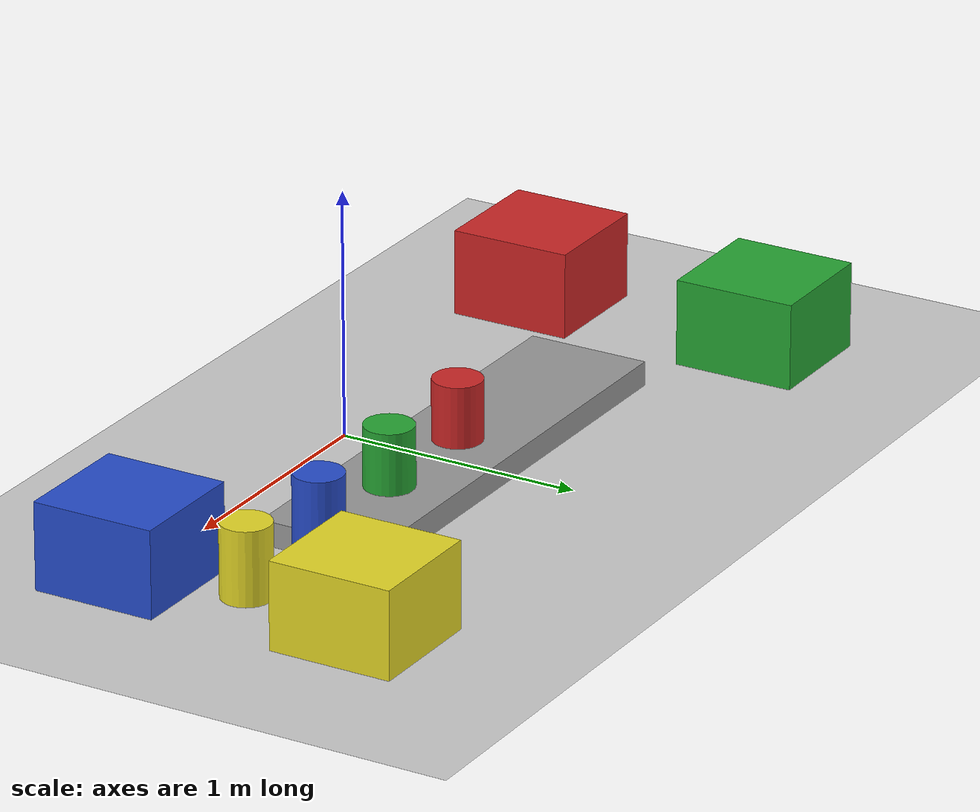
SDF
<?xml version="1.0" ?>
<sdf version="1.6">
  <world name="pick_place_4bins">
    <!-- Ground plane -->
    <include>
      <uri>model://ground_plane</uri>
    </include>
    <!-- Light source -->
    <include>
      <uri>model://sun</uri>
    </include>
    <!-- Conveyor belt (moving box) -->
    <model name="conveyor">
      <pose>0.0 0.5 0.05 0 0 0</pose>
      <link name="link">
        <visual name="visual">
          <geometry>
            <box>
              <size>2.0 0.5 0.1</size>
            </box>
          </geometry>
          <material>
            <script>
              <uri>file://media/materials/scripts/gazebo.material</uri>
              <name>Gazebo/Grey</name>
            </script>
          </material>
        </visual>
        <collision name="collision">
          <geometry>
            <box>
              <size>2.0 0.5 0.1</size>
            </box>
          </geometry>
        </collision>
        <velocity>0.1 0 0 0 0 0</velocity> <!-- Moves along X -->
      </link>
    </model>
    <!-- Plastic garbage (red cylinder) -->
    <model name="plastic_garbage">
      <pose>0.0 0.5 0.2 0 0 0</pose>
      <link name="link">
        <visual name="visual">
          <geometry>
            <cylinder>
              <radius>0.1</radius>
              <length>0.3</length>
            </cylinder>
          </geometry>
          <material>
            <script>
              <uri>file://media/materials/scripts/gazebo.material</uri>
              <name>Gazebo/Red</name>
            </script>
          </material>
        </visual>
        <collision name="collision">
          <geometry>
            <cylinder>
              <radius>0.1</radius>
              <length>0.3</length>
            </cylinder>
          </geometry>
        </collision>
      </link>
    </model>
    <!-- Organic garbage (green cylinder) -->
    <model name="organic_garbage">
      <pose>0.5 0.5 0.2 0 0 0</pose>
      <link name="link">
        <visual name="visual">
          <geometry>
            <cylinder>
              <radius>0.1</radius>
              <length>0.3</length>
            </cylinder>
          </geometry>
          <material>
            <script>
              <uri>file://media/materials/scripts/gazebo.material</uri>
              <name>Gazebo/Green</name>
            </script>
          </material>
        </visual>
        <collision name="collision">
          <geometry>
            <cylinder>
              <radius>0.1</radius>
              <length>0.3</length>
            </cylinder>
          </geometry>
        </collision>
      </link>
    </model>
    <!-- Metal garbage (blue cylinder) -->
    <model name="metal_garbage">
      <pose>1.0 0.5 0.2 0 0 0</pose>
      <link name="link">
        <visual name="visual">
          <geometry>
            <cylinder>
              <radius>0.1</radius>
              <length>0.3</length>
            </cylinder>
          </geometry>
          <material>
            <script>
              <uri>file://media/materials/scripts/gazebo.material</uri>
              <name>Gazebo/Blue</name>
            </script>
          </material>
        </visual>
        <collision name="collision">
          <geometry>
            <cylinder>
              <radius>0.1</radius>
              <length>0.3</length>
            </cylinder>
          </geometry>
        </collision>
      </link>
    </model>
    <!-- Paper garbage (yellow cylinder) -->
    <model name="paper_garbage">
      <pose>1.5 0.5 0.2 0 0 0</pose>
      <link name="link">
        <visual name="visual">
          <geometry>
            <cylinder>
              <radius>0.1</radius>
              <length>0.3</length>
            </cylinder>
          </geometry>
          <material>
            <script>
              <uri>file://media/materials/scripts/gazebo.material</uri>
              <name>Gazebo/Yellow</name>
            </script>
          </material>
        </visual>
        <collision name="collision">
          <geometry>
            <cylinder>
              <radius>0.1</radius>
              <length>0.3</length>
            </cylinder>
          </geometry>
        </collision>
      </link>
    </model>
    <!-- Plastic bin (red box) -->
    <model name="plastic_bin">
      <pose>-1.5 0.0 0.1 0 0 0</pose>
      <link name="link">
        <visual name="visual">
          <geometry>
            <box>
              <size>0.5 0.5 0.5</size>
            </box>
          </geometry>
          <material>
            <script>
              <uri>file://media/materials/scripts/gazebo.material</uri>
              <name>Gazebo/Red</name>
            </script>
          </material>
        </visual>
        <collision name="collision">
          <geometry>
            <box>
              <size>0.5 0.5 0.5</size>
            </box>
          </geometry>
        </collision>
      </link>
    </model>
    <!-- Organic bin (green box) -->
    <model name="organic_bin">
      <pose>-1.5 1.0 0.1 0 0 0</pose>
      <link name="link">
        <visual name="visual">
          <geometry>
            <box>
              <size>0.5 0.5 0.5</size>
            </box>
          </geometry>
          <material>
            <script>
              <uri>file://media/materials/scripts/gazebo.material</uri>
              <name>Gazebo/Green</name>
            </script>
          </material>
        </visual>
        <collision name="collision">
          <geometry>
            <box>
              <size>0.5 0.5 0.5</size>
            </box>
          </geometry>
        </collision>
      </link>
    </model>
    <!-- Metal bin (blue box) -->
    <model name="metal_bin">
      <pose>1.5 0.0 0.1 0 0 0</pose>
      <link name="link">
        <visual name="visual">
          <geometry>
            <box>
              <size>0.5 0.5 0.5</size>
            </box>
          </geometry>
          <material>
            <script>
              <uri>file://media/materials/scripts/gazebo.material</uri>
              <name>Gazebo/Blue</name>
            </script>
          </material>
        </visual>
        <collision name="collision">
          <geometry>
            <box>
              <size>0.5 0.5 0.5</size>
            </box>
          </geometry>
        </collision>
      </link>
    </model>
    <!-- Paper bin (yellow box) -->
    <model name="paper_bin">
      <pose>1.5 1.0 0.1 0 0 0</pose>
      <link name="link">
        <visual name="visual">
          <geometry>
            <box>
              <size>0.5 0.5 0.5</size>
            </box>
          </geometry>
          <material>
            <script>
              <uri>file://media/materials/scripts/gazebo.material</uri>
              <name>Gazebo/Yellow</name>
            </script>
          </material>
        </visual>
        <collision name="collision">
          <geometry>
            <box>
              <size>0.5 0.5 0.5</size>
            </box>
          </geometry>
        </collision>
      </link>
    </model>
  </world>
</sdf>
